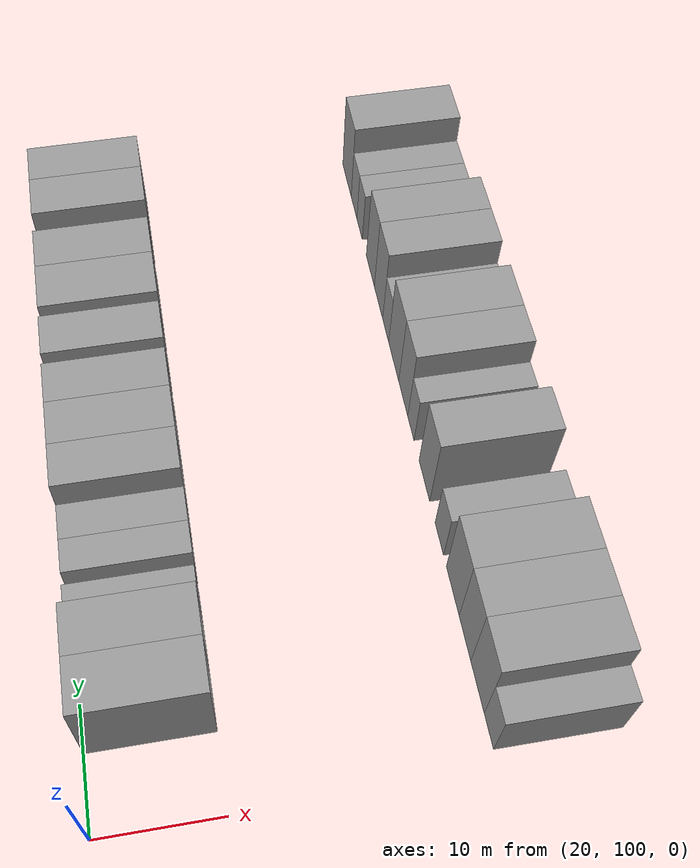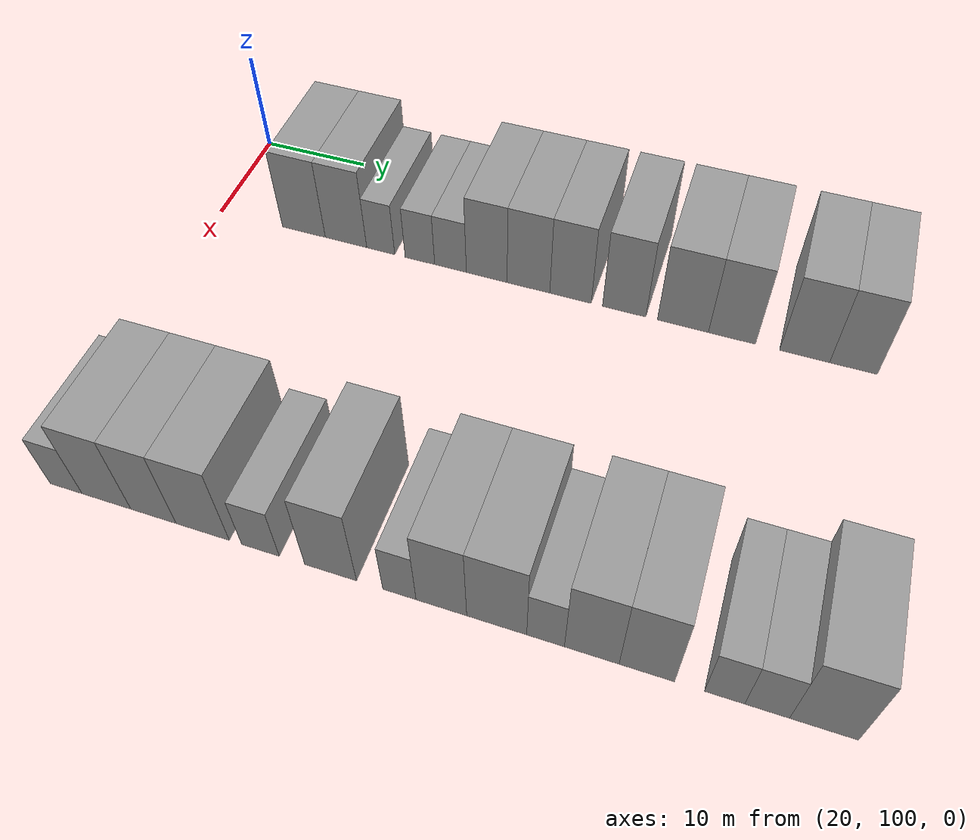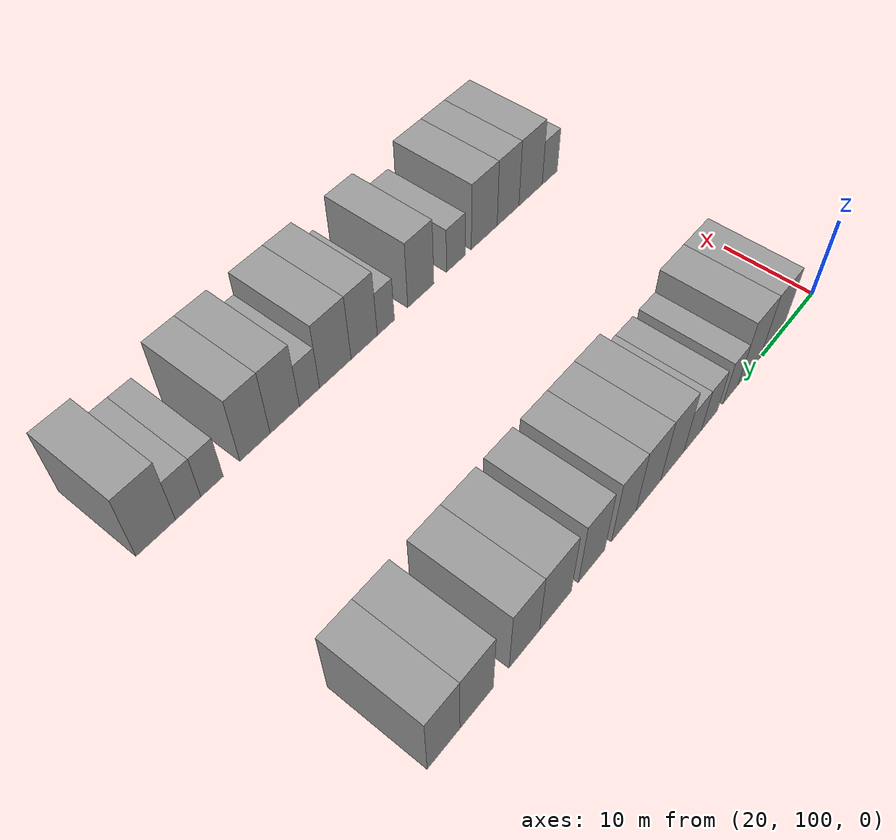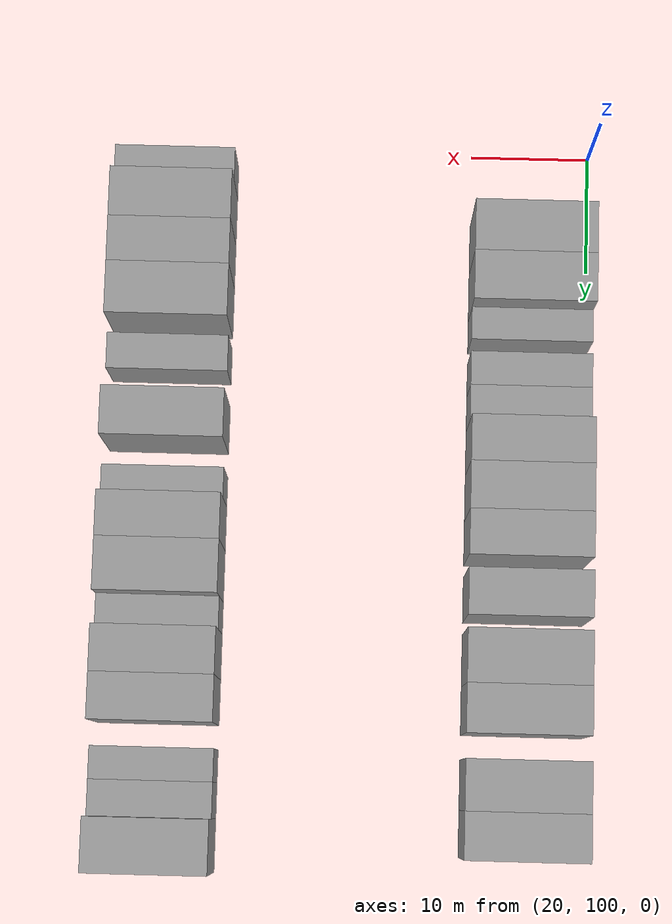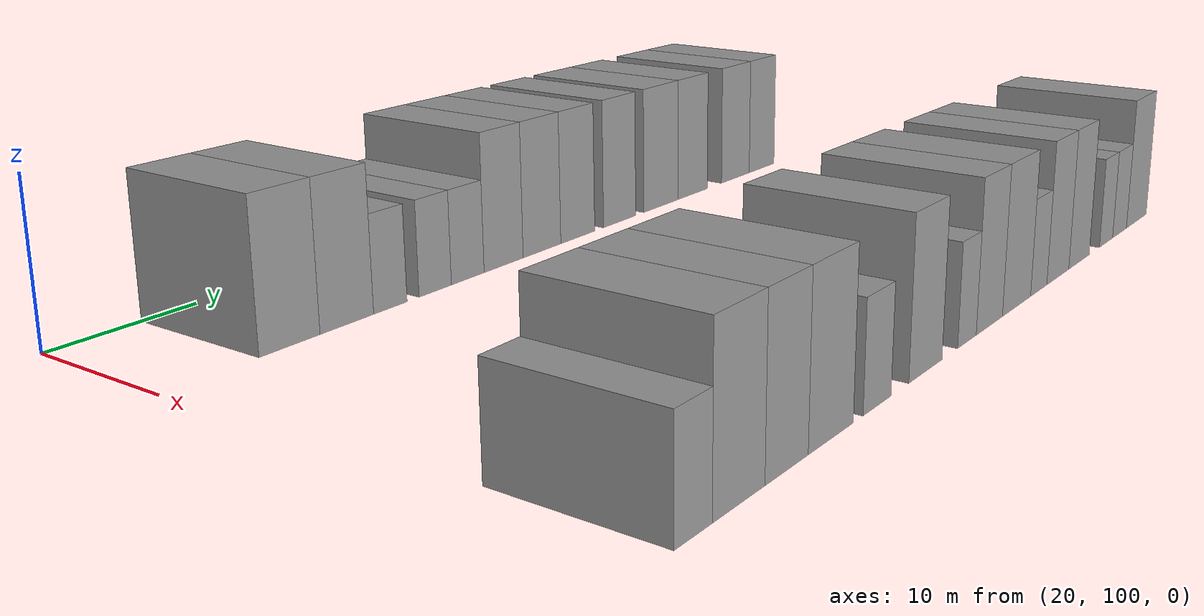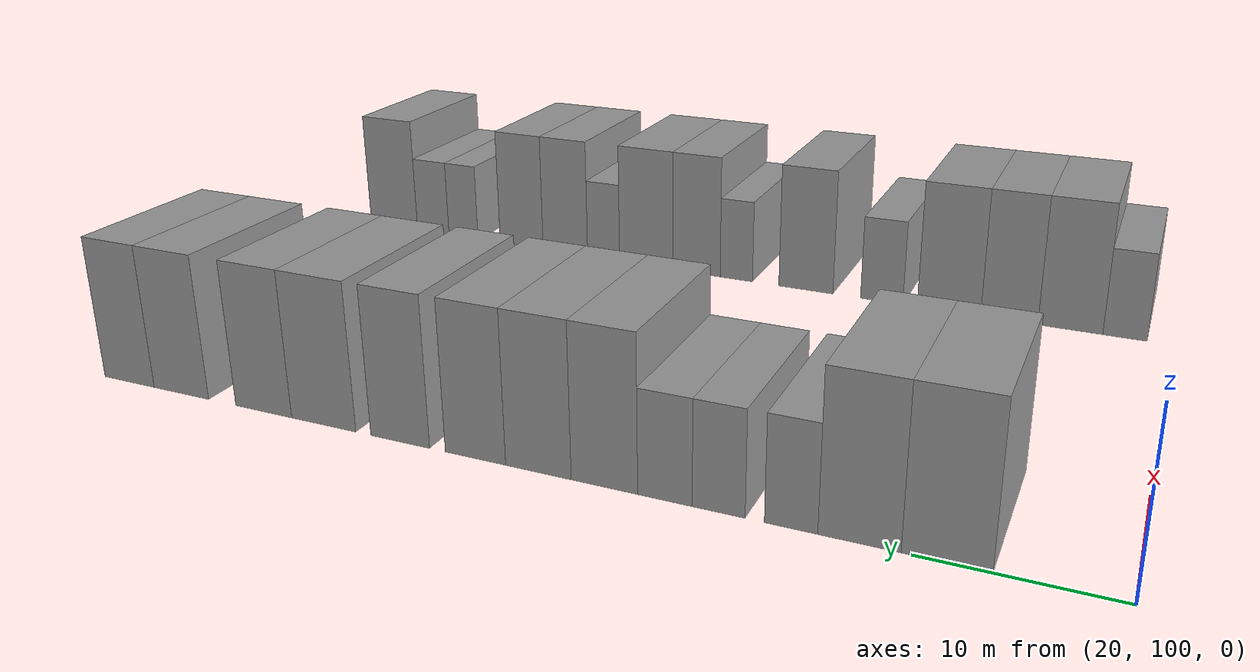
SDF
<sdf version="1.6">
 <world name="default">
  <model name="building_89">
   <static>1</static>
   <pose>25.0000 108.3610 0 0.000000 0.000000 0.000000</pose>
   <link name="link">
    <pose>0 0 4.50 0 0 0</pose>
    <collision name="collision"><geometry><box><size>10.0000 4.2693 9.0000</size></box></geometry></collision>
    <visual name="visual">
     <cast_shadows>0</cast_shadows>
     <geometry><box><size>10.0000 4.2693 9.0000</size></box></geometry>
     <material>
      <script>
       <uri>model://grey_wall/materials/scripts</uri>
       <uri>model://grey_wall/materials/textures</uri>
       <name>vrc/grey_wall</name>
      </script>
     </material>
    </visual>
   </link>
  </model>
  <model name="building_90">
   <static>1</static>
   <pose>25.0000 112.5277 0 0.000000 0.000000 0.000000</pose>
   <link name="link">
    <pose>0 0 4.50 0 0 0</pose>
    <collision name="collision"><geometry><box><size>10.0000 4.0642 9.0000</size></box></geometry></collision>
    <visual name="visual">
     <cast_shadows>0</cast_shadows>
     <geometry><box><size>10.0000 4.0642 9.0000</size></box></geometry>
     <material>
      <script>
       <uri>model://grey_wall/materials/scripts</uri>
       <uri>model://grey_wall/materials/textures</uri>
       <name>vrc/grey_wall</name>
      </script>
     </material>
    </visual>
   </link>
  </model>
  <model name="building_91">
   <static>1</static>
   <pose>25.0000 115.9121 0 0.000000 0.000000 0.000000</pose>
   <link name="link">
    <pose>0 0 3.00 0 0 0</pose>
    <collision name="collision"><geometry><box><size>10.0000 2.7045 6.0000</size></box></geometry></collision>
    <visual name="visual">
     <cast_shadows>0</cast_shadows>
     <geometry><box><size>10.0000 2.7045 6.0000</size></box></geometry>
     <material>
      <script>
       <uri>model://grey_wall/materials/scripts</uri>
       <uri>model://grey_wall/materials/textures</uri>
       <name>vrc/grey_wall</name>
      </script>
     </material>
    </visual>
   </link>
  </model>
  <model name="building_92">
   <static>1</static>
   <pose>25.0000 119.6668 0 0.000000 0.000000 0.000000</pose>
   <link name="link">
    <pose>0 0 3.00 0 0 0</pose>
    <collision name="collision"><geometry><box><size>10.0000 2.8049 6.0000</size></box></geometry></collision>
    <visual name="visual">
     <cast_shadows>0</cast_shadows>
     <geometry><box><size>10.0000 2.8049 6.0000</size></box></geometry>
     <material>
      <script>
       <uri>model://grey_wall/materials/scripts</uri>
       <uri>model://grey_wall/materials/textures</uri>
       <name>vrc/grey_wall</name>
      </script>
     </material>
    </visual>
   </link>
  </model>
  <model name="building_93">
   <static>1</static>
   <pose>25.0000 122.5591 0 0.000000 0.000000 0.000000</pose>
   <link name="link">
    <pose>0 0 3.00 0 0 0</pose>
    <collision name="collision"><geometry><box><size>10.0000 2.9797 6.0000</size></box></geometry></collision>
    <visual name="visual">
     <cast_shadows>0</cast_shadows>
     <geometry><box><size>10.0000 2.9797 6.0000</size></box></geometry>
     <material>
      <script>
       <uri>model://grey_wall/materials/scripts</uri>
       <uri>model://grey_wall/materials/textures</uri>
       <name>vrc/grey_wall</name>
      </script>
     </material>
    </visual>
   </link>
  </model>
  <model name="building_94">
   <static>1</static>
   <pose>25.0000 125.9368 0 0.000000 0.000000 0.000000</pose>
   <link name="link">
    <pose>0 0 4.50 0 0 0</pose>
    <collision name="collision"><geometry><box><size>10.0000 3.7756 9.0000</size></box></geometry></collision>
    <visual name="visual">
     <cast_shadows>0</cast_shadows>
     <geometry><box><size>10.0000 3.7756 9.0000</size></box></geometry>
     <material>
      <script>
       <uri>model://grey_wall/materials/scripts</uri>
       <uri>model://grey_wall/materials/textures</uri>
       <name>vrc/grey_wall</name>
      </script>
     </material>
    </visual>
   </link>
  </model>
  <model name="building_95">
   <static>1</static>
   <pose>25.0000 129.7672 0 0.000000 0.000000 0.000000</pose>
   <link name="link">
    <pose>0 0 4.50 0 0 0</pose>
    <collision name="collision"><geometry><box><size>10.0000 3.8853 9.0000</size></box></geometry></collision>
    <visual name="visual">
     <cast_shadows>0</cast_shadows>
     <geometry><box><size>10.0000 3.8853 9.0000</size></box></geometry>
     <material>
      <script>
       <uri>model://grey_wall/materials/scripts</uri>
       <uri>model://grey_wall/materials/textures</uri>
       <name>vrc/grey_wall</name>
      </script>
     </material>
    </visual>
   </link>
  </model>
  <model name="building_96">
   <static>1</static>
   <pose>25.0000 133.5662 0 0.000000 0.000000 0.000000</pose>
   <link name="link">
    <pose>0 0 4.50 0 0 0</pose>
    <collision name="collision"><geometry><box><size>10.0000 3.7128 9.0000</size></box></geometry></collision>
    <visual name="visual">
     <cast_shadows>0</cast_shadows>
     <geometry><box><size>10.0000 3.7128 9.0000</size></box></geometry>
     <material>
      <script>
       <uri>model://grey_wall/materials/scripts</uri>
       <uri>model://grey_wall/materials/textures</uri>
       <name>vrc/grey_wall</name>
      </script>
     </material>
    </visual>
   </link>
  </model>
  <model name="building_97">
   <static>1</static>
   <pose>25.0000 138.3248 0 0.000000 0.000000 0.000000</pose>
   <link name="link">
    <pose>0 0 4.50 0 0 0</pose>
    <collision name="collision"><geometry><box><size>10.0000 3.8044 9.0000</size></box></geometry></collision>
    <visual name="visual">
     <cast_shadows>0</cast_shadows>
     <geometry><box><size>10.0000 3.8044 9.0000</size></box></geometry>
     <material>
      <script>
       <uri>model://grey_wall/materials/scripts</uri>
       <uri>model://grey_wall/materials/textures</uri>
       <name>vrc/grey_wall</name>
      </script>
     </material>
    </visual>
   </link>
  </model>
  <model name="building_98">
   <static>1</static>
   <pose>25.0000 143.4161 0 0.000000 0.000000 0.000000</pose>
   <link name="link">
    <pose>0 0 4.50 0 0 0</pose>
    <collision name="collision"><geometry><box><size>10.0000 4.3781 9.0000</size></box></geometry></collision>
    <visual name="visual">
     <cast_shadows>0</cast_shadows>
     <geometry><box><size>10.0000 4.3781 9.0000</size></box></geometry>
     <material>
      <script>
       <uri>model://grey_wall/materials/scripts</uri>
       <uri>model://grey_wall/materials/textures</uri>
       <name>vrc/grey_wall</name>
      </script>
     </material>
    </visual>
   </link>
  </model>
  <model name="building_99">
   <static>1</static>
   <pose>25.0000 147.5874 0 0.000000 0.000000 0.000000</pose>
   <link name="link">
    <pose>0 0 4.50 0 0 0</pose>
    <collision name="collision"><geometry><box><size>10.0000 3.9645 9.0000</size></box></geometry></collision>
    <visual name="visual">
     <cast_shadows>0</cast_shadows>
     <geometry><box><size>10.0000 3.9645 9.0000</size></box></geometry>
     <material>
      <script>
       <uri>model://grey_wall/materials/scripts</uri>
       <uri>model://grey_wall/materials/textures</uri>
       <name>vrc/grey_wall</name>
      </script>
     </material>
    </visual>
   </link>
  </model>
  <model name="building_100">
   <static>1</static>
   <pose>25.0000 153.6182 0 0.000000 0.000000 0.000000</pose>
   <link name="link">
    <pose>0 0 4.50 0 0 0</pose>
    <collision name="collision"><geometry><box><size>10.0000 4.0971 9.0000</size></box></geometry></collision>
    <visual name="visual">
     <cast_shadows>0</cast_shadows>
     <geometry><box><size>10.0000 4.0971 9.0000</size></box></geometry>
     <material>
      <script>
       <uri>model://grey_wall/materials/scripts</uri>
       <uri>model://grey_wall/materials/textures</uri>
       <name>vrc/grey_wall</name>
      </script>
     </material>
    </visual>
   </link>
  </model>
  <model name="building_101">
   <static>1</static>
   <pose>25.0000 157.5860 0 0.000000 0.000000 0.000000</pose>
   <link name="link">
    <pose>0 0 4.50 0 0 0</pose>
    <collision name="collision"><geometry><box><size>10.0000 3.8385 9.0000</size></box></geometry></collision>
    <visual name="visual">
     <cast_shadows>0</cast_shadows>
     <geometry><box><size>10.0000 3.8385 9.0000</size></box></geometry>
     <material>
      <script>
       <uri>model://grey_wall/materials/scripts</uri>
       <uri>model://grey_wall/materials/textures</uri>
       <name>vrc/grey_wall</name>
      </script>
     </material>
    </visual>
   </link>
  </model>
  <model name="building_198">
   <static>1</static>
   <pose>55.0000 102.8929 0 0.000000 0.000000 0.000000</pose>
   <link name="link">
    <pose>0 0 3.00 0 0 0</pose>
    <collision name="collision"><geometry><box><size>10.0000 2.7495 6.0000</size></box></geometry></collision>
    <visual name="visual">
     <cast_shadows>0</cast_shadows>
     <geometry><box><size>10.0000 2.7495 6.0000</size></box></geometry>
     <material>
      <script>
       <uri>model://grey_wall/materials/scripts</uri>
       <uri>model://grey_wall/materials/textures</uri>
       <name>vrc/grey_wall</name>
      </script>
     </material>
    </visual>
   </link>
  </model>
  <model name="building_199">
   <static>1</static>
   <pose>55.0000 106.3410 0 0.000000 0.000000 0.000000</pose>
   <link name="link">
    <pose>0 0 4.50 0 0 0</pose>
    <collision name="collision"><geometry><box><size>10.0000 4.1467 9.0000</size></box></geometry></collision>
    <visual name="visual">
     <cast_shadows>0</cast_shadows>
     <geometry><box><size>10.0000 4.1467 9.0000</size></box></geometry>
     <material>
      <script>
       <uri>model://grey_wall/materials/scripts</uri>
       <uri>model://grey_wall/materials/textures</uri>
       <name>vrc/grey_wall</name>
      </script>
     </material>
    </visual>
   </link>
  </model>
  <model name="building_200">
   <static>1</static>
   <pose>55.0000 110.2976 0 0.000000 0.000000 0.000000</pose>
   <link name="link">
    <pose>0 0 4.50 0 0 0</pose>
    <collision name="collision"><geometry><box><size>10.0000 3.7666 9.0000</size></box></geometry></collision>
    <visual name="visual">
     <cast_shadows>0</cast_shadows>
     <geometry><box><size>10.0000 3.7666 9.0000</size></box></geometry>
     <material>
      <script>
       <uri>model://grey_wall/materials/scripts</uri>
       <uri>model://grey_wall/materials/textures</uri>
       <name>vrc/grey_wall</name>
      </script>
     </material>
    </visual>
   </link>
  </model>
  <model name="building_201">
   <static>1</static>
   <pose>55.0000 114.3428 0 0.000000 0.000000 0.000000</pose>
   <link name="link">
    <pose>0 0 4.50 0 0 0</pose>
    <collision name="collision"><geometry><box><size>10.0000 4.3238 9.0000</size></box></geometry></collision>
    <visual name="visual">
     <cast_shadows>0</cast_shadows>
     <geometry><box><size>10.0000 4.3238 9.0000</size></box></geometry>
     <material>
      <script>
       <uri>model://grey_wall/materials/scripts</uri>
       <uri>model://grey_wall/materials/textures</uri>
       <name>vrc/grey_wall</name>
      </script>
     </material>
    </visual>
   </link>
  </model>
  <model name="building_202">
   <static>1</static>
   <pose>55.0000 118.9981 0 0.000000 0.000000 0.000000</pose>
   <link name="link">
    <pose>0 0 3.00 0 0 0</pose>
    <collision name="collision"><geometry><box><size>10.0000 2.9869 6.0000</size></box></geometry></collision>
    <visual name="visual">
     <cast_shadows>0</cast_shadows>
     <geometry><box><size>10.0000 2.9869 6.0000</size></box></geometry>
     <material>
      <script>
       <uri>model://grey_wall/materials/scripts</uri>
       <uri>model://grey_wall/materials/textures</uri>
       <name>vrc/grey_wall</name>
      </script>
     </material>
    </visual>
   </link>
  </model>
  <model name="building_203">
   <static>1</static>
   <pose>55.0000 124.4916 0 0.000000 0.000000 0.000000</pose>
   <link name="link">
    <pose>0 0 4.50 0 0 0</pose>
    <collision name="collision"><geometry><box><size>10.0000 4.0000 9.0000</size></box></geometry></collision>
    <visual name="visual">
     <cast_shadows>0</cast_shadows>
     <geometry><box><size>10.0000 4.0000 9.0000</size></box></geometry>
     <material>
      <script>
       <uri>model://grey_wall/materials/scripts</uri>
       <uri>model://grey_wall/materials/textures</uri>
       <name>vrc/grey_wall</name>
      </script>
     </material>
    </visual>
   </link>
  </model>
  <model name="building_204">
   <static>1</static>
   <pose>55.0000 129.7374 0 0.000000 0.000000 0.000000</pose>
   <link name="link">
    <pose>0 0 3.00 0 0 0</pose>
    <collision name="collision"><geometry><box><size>10.0000 2.4916 6.0000</size></box></geometry></collision>
    <visual name="visual">
     <cast_shadows>0</cast_shadows>
     <geometry><box><size>10.0000 2.4916 6.0000</size></box></geometry>
     <material>
      <script>
       <uri>model://grey_wall/materials/scripts</uri>
       <uri>model://grey_wall/materials/textures</uri>
       <name>vrc/grey_wall</name>
      </script>
     </material>
    </visual>
   </link>
  </model>
  <model name="building_205">
   <static>1</static>
   <pose>55.0000 132.8518 0 0.000000 0.000000 0.000000</pose>
   <link name="link">
    <pose>0 0 4.50 0 0 0</pose>
    <collision name="collision"><geometry><box><size>10.0000 3.7372 9.0000</size></box></geometry></collision>
    <visual name="visual">
     <cast_shadows>0</cast_shadows>
     <geometry><box><size>10.0000 3.7372 9.0000</size></box></geometry>
     <material>
      <script>
       <uri>model://grey_wall/materials/scripts</uri>
       <uri>model://grey_wall/materials/textures</uri>
       <name>vrc/grey_wall</name>
      </script>
     </material>
    </visual>
   </link>
  </model>
  <model name="building_206">
   <static>1</static>
   <pose>55.0000 136.8834 0 0.000000 0.000000 0.000000</pose>
   <link name="link">
    <pose>0 0 4.50 0 0 0</pose>
    <collision name="collision"><geometry><box><size>10.0000 4.3261 9.0000</size></box></geometry></collision>
    <visual name="visual">
     <cast_shadows>0</cast_shadows>
     <geometry><box><size>10.0000 4.3261 9.0000</size></box></geometry>
     <material>
      <script>
       <uri>model://grey_wall/materials/scripts</uri>
       <uri>model://grey_wall/materials/textures</uri>
       <name>vrc/grey_wall</name>
      </script>
     </material>
    </visual>
   </link>
  </model>
  <model name="building_207">
   <static>1</static>
   <pose>55.0000 140.3801 0 0.000000 0.000000 0.000000</pose>
   <link name="link">
    <pose>0 0 3.00 0 0 0</pose>
    <collision name="collision"><geometry><box><size>10.0000 2.6673 6.0000</size></box></geometry></collision>
    <visual name="visual">
     <cast_shadows>0</cast_shadows>
     <geometry><box><size>10.0000 2.6673 6.0000</size></box></geometry>
     <material>
      <script>
       <uri>model://grey_wall/materials/scripts</uri>
       <uri>model://grey_wall/materials/textures</uri>
       <name>vrc/grey_wall</name>
      </script>
     </material>
    </visual>
   </link>
  </model>
  <model name="building_208">
   <static>1</static>
   <pose>55.0000 143.6154 0 0.000000 0.000000 0.000000</pose>
   <link name="link">
    <pose>0 0 4.50 0 0 0</pose>
    <collision name="collision"><geometry><box><size>10.0000 3.8032 9.0000</size></box></geometry></collision>
    <visual name="visual">
     <cast_shadows>0</cast_shadows>
     <geometry><box><size>10.0000 3.8032 9.0000</size></box></geometry>
     <material>
      <script>
       <uri>model://grey_wall/materials/scripts</uri>
       <uri>model://grey_wall/materials/textures</uri>
       <name>vrc/grey_wall</name>
      </script>
     </material>
    </visual>
   </link>
  </model>
  <model name="building_209">
   <static>1</static>
   <pose>55.0000 147.4070 0 0.000000 0.000000 0.000000</pose>
   <link name="link">
    <pose>0 0 4.50 0 0 0</pose>
    <collision name="collision"><geometry><box><size>10.0000 3.7798 9.0000</size></box></geometry></collision>
    <visual name="visual">
     <cast_shadows>0</cast_shadows>
     <geometry><box><size>10.0000 3.7798 9.0000</size></box></geometry>
     <material>
      <script>
       <uri>model://grey_wall/materials/scripts</uri>
       <uri>model://grey_wall/materials/textures</uri>
       <name>vrc/grey_wall</name>
      </script>
     </material>
    </visual>
   </link>
  </model>
  <model name="building_210">
   <static>1</static>
   <pose>55.0000 152.6232 0 0.000000 0.000000 0.000000</pose>
   <link name="link">
    <pose>0 0 3.00 0 0 0</pose>
    <collision name="collision"><geometry><box><size>10.0000 2.6526 6.0000</size></box></geometry></collision>
    <visual name="visual">
     <cast_shadows>0</cast_shadows>
     <geometry><box><size>10.0000 2.6526 6.0000</size></box></geometry>
     <material>
      <script>
       <uri>model://grey_wall/materials/scripts</uri>
       <uri>model://grey_wall/materials/textures</uri>
       <name>vrc/grey_wall</name>
      </script>
     </material>
    </visual>
   </link>
  </model>
  <model name="building_211">
   <static>1</static>
   <pose>55.0000 155.4101 0 0.000000 0.000000 0.000000</pose>
   <link name="link">
    <pose>0 0 3.00 0 0 0</pose>
    <collision name="collision"><geometry><box><size>10.0000 2.9212 6.0000</size></box></geometry></collision>
    <visual name="visual">
     <cast_shadows>0</cast_shadows>
     <geometry><box><size>10.0000 2.9212 6.0000</size></box></geometry>
     <material>
      <script>
       <uri>model://grey_wall/materials/scripts</uri>
       <uri>model://grey_wall/materials/textures</uri>
       <name>vrc/grey_wall</name>
      </script>
     </material>
    </visual>
   </link>
  </model>
  <model name="building_212">
   <static>1</static>
   <pose>55.0000 159.0702 0 0.000000 0.000000 0.000000</pose>
   <link name="link">
    <pose>0 0 4.50 0 0 0</pose>
    <collision name="collision"><geometry><box><size>10.0000 4.3991 9.0000</size></box></geometry></collision>
    <visual name="visual">
     <cast_shadows>0</cast_shadows>
     <geometry><box><size>10.0000 4.3991 9.0000</size></box></geometry>
     <material>
      <script>
       <uri>model://grey_wall/materials/scripts</uri>
       <uri>model://grey_wall/materials/textures</uri>
       <name>vrc/grey_wall</name>
      </script>
     </material>
    </visual>
   </link>
  </model>
 </world>
</sdf>
